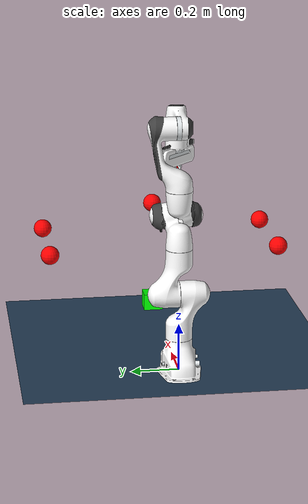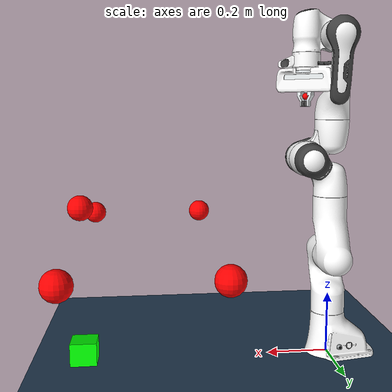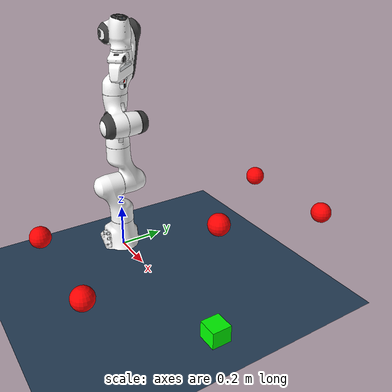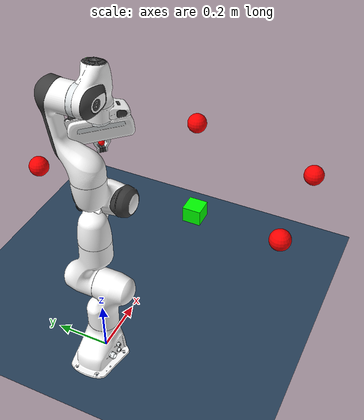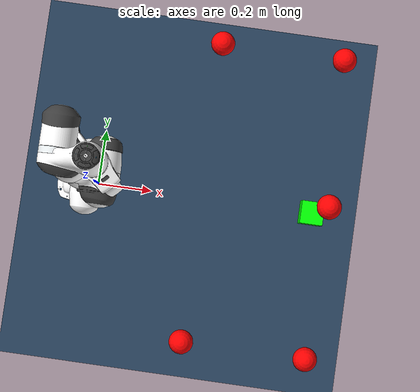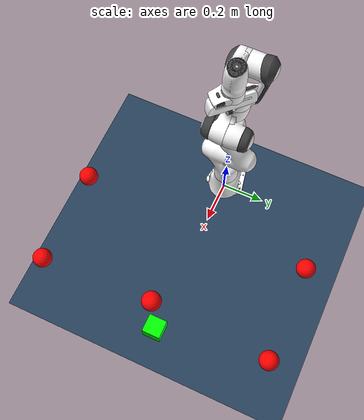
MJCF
<mujoco model="panda scene">
  <include file="panda.xml"/>

  <statistic center="0.3 0 0.4" extent="1"/>

  <visual>
    <headlight diffuse="0.6 0.6 0.6" ambient="0.3 0.3 0.3" specular="0 0 0"/>
    <rgba haze="0.15 0.25 0.35 1"/>
    <global azimuth="120" elevation="-20"/>
  </visual>

  <asset>
    <texture type="skybox" builtin="gradient" rgb1="0.3 0.5 0.7" rgb2="0 0 0" width="512" height="3072"/>
    <texture type="2d" name="groundplane" builtin="checker" mark="edge" rgb1="0.2 0.3 0.4" rgb2="0.1 0.2 0.3"
      markrgb="0.8 0.8 0.8" width="300" height="300"/>
    <material name="groundplane" texture="groundplane" texuniform="true" texrepeat="5 5" reflectance="0.2"/>
  </asset>

  <worldbody>
    <light pos="0 0 1.5" dir="0 0 -1" directional="true"/>
    <geom name="floor" size="0 0 0.05" type="plane" material="groundplane"/>

  <!-- add one box  -->
  <body name="cube" pos="0.8 0 0.03">
    <geom type="box" size="0.042 0.042 0.042" mass="0.05" rgba="0 1 0 1" friction="1.0 1.0 1.0" contype="1" conaffinity="1"/>
  </body>

  <!-- add 2 box  -->

  <geom name="obstacle1"
      type="sphere"
      size="0.04"
      pos="0.8 0.0 0.5"
      rgba="1 0 0 1"/>

  <geom name="obstacle3"
      type="sphere"
      size="0.04"
      pos="0.8 0.5 0.4"
      rgba="1 0 0 1"/>

  <geom name="obstacle4"
      type="sphere"
      size="0.04"
      pos="0.39 0.5 0.4"
      rgba="1 0 0 1"/>

  <geom name="obstacle5"
      type="sphere"
      size="0.04"
      pos="0.8 -0.5 0.4"
      rgba="1 0 0 1"/>

  <geom name="obstacle6"
      type="sphere"
      size="0.04"
      pos="0.39 -0.5 0.4"
      rgba="1 0 0 1"/>

  </worldbody>

</mujoco>

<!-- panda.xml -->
<mujoco model="panda">
  <compiler angle="radian" meshdir="assets" autolimits="true"/>

  <option integrator="implicitfast"/>

  <default>
    <default class="panda">
      <material specular="0.5" shininess="0.25"/>
      <joint armature="0.1" damping="1" axis="0 0 1" range="-2.8973 2.8973"/>
      <general dyntype="none" biastype="affine" ctrlrange="-2.8973 2.8973" forcerange="-87 87"/>
      <default class="finger">
        <joint axis="0 1 0" type="slide" range="0 0.04"/>
      </default>

      <default class="visual">
        <geom type="mesh" contype="0" conaffinity="0" group="2"/>
      </default>
      <default class="collision">
        <geom type="mesh" group="3"/>
        <default class="fingertip_pad_collision_1">
           <geom type="box" size="0.0085 0.004 0.0085" pos="0 0.0055 0.0445" friction="1.0 1.0 1.0001" contype="1" conaffinity="1" condim="4"/>
        </default>
        <default class="fingertip_pad_collision_2">
          <geom type="box" size="0.003 0.002 0.003" pos="0.0055 0.002 0.05" friction="1.0 1.0 1.0001" contype="1" conaffinity="1" condim="4"/>
        </default>
        <default class="fingertip_pad_collision_3">
          <geom type="box" size="0.003 0.002 0.003" pos="-0.0055 0.002 0.05" friction="1.0 1.0 1.0001" contype="1" conaffinity="1" condim="4"/>
        </default>
        <default class="fingertip_pad_collision_4">
          <geom type="box" size="0.003 0.002 0.0035" pos="0.0055 0.002 0.0395" friction="1.0 1.0 1.0001" contype="1" conaffinity="1" condim="4"/>
        </default>
        <default class="fingertip_pad_collision_5">
          <geom type="box" size="0.003 0.002 0.0035" pos="-0.0055 0.002 0.0395" friction="1.0 1.0 1.0001" contype="1" conaffinity="1" condim="4"/>
        </default>
      </default>
    </default>
  </default>

  <asset>
    <material class="panda" name="white" rgba="1 1 1 1"/>
    <material class="panda" name="off_white" rgba="0.901961 0.921569 0.929412 1"/>
    <material class="panda" name="black" rgba="0.25 0.25 0.25 1"/>
    <material class="panda" name="green" rgba="0 1 0 1"/>
    <material class="panda" name="light_blue" rgba="0.039216 0.541176 0.780392 1"/>

    <!-- Collision meshes -->
    <mesh name="link0_c" file="link0.stl"/>
    <mesh name="link1_c" file="link1.stl"/>
    <mesh name="link2_c" file="link2.stl"/>
    <mesh name="link3_c" file="link3.stl"/>
    <mesh name="link4_c" file="link4.stl"/>
    <mesh name="link5_c0" file="link5_collision_0.obj"/>
    <mesh name="link5_c1" file="link5_collision_1.obj"/>
    <mesh name="link5_c2" file="link5_collision_2.obj"/>
    <mesh name="link6_c" file="link6.stl"/>
    <mesh name="link7_c" file="link7.stl"/>
    <mesh name="hand_c" file="hand.stl"/>

    <!-- Visual meshes -->
    <mesh file="link0_0.obj"/>
    <mesh file="link0_1.obj"/>
    <mesh file="link0_2.obj"/>
    <mesh file="link0_3.obj"/>
    <mesh file="link0_4.obj"/>
    <mesh file="link0_5.obj"/>
    <mesh file="link0_7.obj"/>
    <mesh file="link0_8.obj"/>
    <mesh file="link0_9.obj"/>
    <mesh file="link0_10.obj"/>
    <mesh file="link0_11.obj"/>
    <mesh file="link1.obj"/>
    <mesh file="link2.obj"/>
    <mesh file="link3_0.obj"/>
    <mesh file="link3_1.obj"/>
    <mesh file="link3_2.obj"/>
    <mesh file="link3_3.obj"/>
    <mesh file="link4_0.obj"/>
    <mesh file="link4_1.obj"/>
    <mesh file="link4_2.obj"/>
    <mesh file="link4_3.obj"/>
    <mesh file="link5_0.obj"/>
    <mesh file="link5_1.obj"/>
    <mesh file="link5_2.obj"/>
    <mesh file="link6_0.obj"/>
    <mesh file="link6_1.obj"/>
    <mesh file="link6_2.obj"/>
    <mesh file="link6_3.obj"/>
    <mesh file="link6_4.obj"/>
    <mesh file="link6_5.obj"/>
    <mesh file="link6_6.obj"/>
    <mesh file="link6_7.obj"/>
    <mesh file="link6_8.obj"/>
    <mesh file="link6_9.obj"/>
    <mesh file="link6_10.obj"/>
    <mesh file="link6_11.obj"/>
    <mesh file="link6_12.obj"/>
    <mesh file="link6_13.obj"/>
    <mesh file="link6_14.obj"/>
    <mesh file="link6_15.obj"/>
    <mesh file="link6_16.obj"/>
    <mesh file="link7_0.obj"/>
    <mesh file="link7_1.obj"/>
    <mesh file="link7_2.obj"/>
    <mesh file="link7_3.obj"/>
    <mesh file="link7_4.obj"/>
    <mesh file="link7_5.obj"/>
    <mesh file="link7_6.obj"/>
    <mesh file="link7_7.obj"/>
    <mesh file="hand_0.obj"/>
    <mesh file="hand_1.obj"/>
    <mesh file="hand_2.obj"/>
    <mesh file="hand_3.obj"/>
    <mesh file="hand_4.obj"/>
    <mesh file="finger_0.obj"/>
    <mesh file="finger_1.obj"/>
  </asset>

  <worldbody>
    <light name="top" pos="0 0 2" mode="trackcom"/>
    <body name="link0" childclass="panda">
      <inertial mass="0.629769" pos="-0.041018 -0.00014 0.049974"
        fullinertia="0.00315 0.00388 0.004285 8.2904e-7 0.00015 8.2299e-6"/>
      <geom mesh="link0_0" material="off_white" class="visual"/>
      <geom mesh="link0_1" material="black" class="visual"/>
      <geom mesh="link0_2" material="off_white" class="visual"/>
      <geom mesh="link0_3" material="black" class="visual"/>
      <geom mesh="link0_4" material="off_white" class="visual"/>
      <geom mesh="link0_5" material="black" class="visual"/>
      <geom mesh="link0_7" material="white" class="visual"/>
      <geom mesh="link0_8" material="white" class="visual"/>
      <geom mesh="link0_9" material="black" class="visual"/>
      <geom mesh="link0_10" material="off_white" class="visual"/>
      <geom mesh="link0_11" material="white" class="visual"/>
      <geom mesh="link0_c" class="collision"/>
      <body name="link1" pos="0 0 0.333">
        <inertial mass="4.970684" pos="0.003875 0.002081 -0.04762"
          fullinertia="0.70337 0.70661 0.0091170 -0.00013900 0.0067720 0.019169"/>
        <joint name="joint1"/>
        <geom material="white" mesh="link1" class="visual"/>
        <geom name="link1_c" mesh="link1_c" class="collision"/>
        <body name="link2" quat="1 -1 0 0">
          <!-- violet color site @ link2   of VIBGYOR -->
          <site name="link2_site" type="sphere" pos="0 -0.14 0" size="0.056" rgba="0.56 0.00 1.00 0"/>
          <site name="link2_site2" type="sphere" pos="0 0 0.06" size="0.056" rgba="0.56 0.00 1.00 0"/>
          <inertial mass="0.646926" pos="-0.003141 -0.02872 0.003495"
            fullinertia="0.0079620 2.8110e-2 2.5995e-2 -3.925e-3 1.0254e-2 7.04e-4"/>
          <joint name="joint2" range="-1.7628 1.7628"/>
          <geom material="white" mesh="link2" class="visual"/>
          <geom name = "link2_c" mesh="link2_c" class="collision"/>
          <body name="link3" pos="0 -0.316 0" quat="1 1 0 0">
          <!-- indigo color site @ link3   of VIBGYOR -->
            <site name="link3_site" type="sphere" pos="0 0 -0.04" size="0.07" rgba="0.29 0.00 0.51 0"/>
            <site name="link3_site2" type="sphere" pos="0 0 -0.08" size="0.07" rgba="0.29 0.00 0.51 0"/>
            <site name="link3_site3" type="sphere" pos="0 0 -0.12" size="0.07" rgba="0.29 0.00 0.51 0"/>
            <joint name="joint3"/>
            <inertial mass="3.228604" pos="2.7518e-2 3.9252e-2 -6.6502e-2"
              fullinertia="3.7242e-2 3.6155e-2 1.083e-2 -4.761e-3 -1.1396e-2 -1.2805e-2"/>
            <geom mesh="link3_0" material="white" class="visual"/>
            <geom mesh="link3_1" material="white" class="visual"/>
            <geom mesh="link3_2" material="white" class="visual"/>
            <geom mesh="link3_3" material="black" class="visual"/>
            <geom name = "link3_c" mesh="link3_c" class="collision"/>
            <body name="link4" pos="0.0825 0 0" quat="1 1 0 0">
            <!-- blue color site @ link4   of VIBGYOR -->
              <site name="link4_site" type="sphere" pos="0 0 0" size="0.07" rgba="0.00 0.35 1.00 0"/>
              <site name="link4_site2" type="sphere" pos="0 0 0.05" size="0.07" rgba="0.00 0.35 1.00 0"/>
              <site name="link4_site3" type="sphere" pos="0 0 -0.05" size="0.07" rgba="0.00 0.35 1.00 0"/>
              <site name="link4_site4" type="sphere" pos="-0.08 0.085 0" size="0.07" rgba="0.00 0.35 1.00 0"/>
              <inertial mass="3.587895" pos="-5.317e-2 1.04419e-1 2.7454e-2" fullinertia="2.5853e-2 1.9552e-2 2.8323e-2 7.796e-3 -1.332e-3 8.641e-3"/>
              <joint name="joint4" range="-3.0718 -0.0698"/>
              <geom mesh="link4_0" material="white" class="visual"/>
              <geom mesh="link4_1" material="white" class="visual"/>
              <geom mesh="link4_2" material="black" class="visual"/>
              <geom mesh="link4_3" material="white" class="visual"/>
              <geom name = "link4_c" mesh="link4_c" class="collision"/>

              <body name="link5" pos="-0.0825 0.384 0" quat="1 -1 0 0">
                <site name="link5_site" type="sphere" pos="0 0.098 -0.06" size="0.06" rgba="0.00 0.80 0.00 0"/>
                <site name="link5_site2" type="sphere" pos="0 0.09 -0.1" size="0.06" rgba="0.00 0.80 0.00 0"/>
                <site name="link5_site3" type="sphere" pos="0 0.08 -0.15" size="0.06" rgba="0.00 0.80 0.00 0"/>
                <site name="link5_site4" type="sphere" pos="0 0.04 -0.19" size="0.06" rgba="0.00 0.80 0.00 0"/>
                <site name="link5_site5" type="sphere" pos="0 0 -0.23" size="0.06" rgba="0.00 0.80 0.00 0"/>
                <inertial mass="1.225946" pos="-1.1953e-2 4.1065e-2 -3.8437e-2"
                  fullinertia="3.5549e-2 2.9474e-2 8.627e-3 -2.117e-3 -4.037e-3 2.29e-4"/>
                <joint name="joint5"/>
                <geom mesh="link5_0" material="black" class="visual"/>
                <geom mesh="link5_1" material="white" class="visual"/>
                <geom mesh="link5_2" material="white" class="visual"/>
                <geom name = "link5_c0" mesh="link5_c0" class="collision"/>
                <geom name = "link5_c1" mesh="link5_c1" class="collision"/>
                <geom name = "link5_c2" mesh="link5_c2" class="collision"/>
                <body name="link6" quat="1 1 0 0">
                  <site name="link6_site" type="sphere" pos="0 0 0.01" size="0.06" rgba="1 1 0 0"/>
                  <site name="link6_site2" type="sphere" pos="0.06 0.015 0.01" size="0.06" rgba="1 1 0 0"/>
                  <site name="link6_site3" type="sphere" pos="0 0 -0.045" size="0.06" rgba="1 1 0 0"/>
                  <site name="link6_site4" type="sphere" pos="0 0 -0.085" size="0.06" rgba="1 1 0 0"/>
                  <inertial mass="1.666555" pos="6.0149e-2 -1.4117e-2 -1.0517e-2"
                    fullinertia="1.964e-3 4.354e-3 5.433e-3 1.09e-4 -1.158e-3 3.41e-4"/>
                  <joint name="joint6" range="-0.0175 3.7525"/>
                  <geom mesh="link6_0" material="off_white" class="visual"/>
                  <geom mesh="link6_1" material="white" class="visual"/>
                  <geom mesh="link6_2" material="black" class="visual"/>
                  <geom mesh="link6_3" material="white" class="visual"/>
                  <geom mesh="link6_4" material="white" class="visual"/>
                  <geom mesh="link6_5" material="white" class="visual"/>
                  <geom mesh="link6_6" material="white" class="visual"/>
                  <geom mesh="link6_7" material="light_blue" class="visual"/>
                  <geom mesh="link6_8" material="light_blue" class="visual"/>
                  <geom mesh="link6_9" material="black" class="visual"/>
                  <geom mesh="link6_10" material="black" class="visual"/>
                  <geom mesh="link6_11" material="white" class="visual"/>
                  <geom mesh="link6_12" material="green" class="visual"/>
                  <geom mesh="link6_13" material="white" class="visual"/>
                  <geom mesh="link6_14" material="black" class="visual"/>
                  <geom mesh="link6_15" material="black" class="visual"/>
                  <geom mesh="link6_16" material="white" class="visual"/>
                  <geom name="link6_c" mesh="link6_c" class="collision"/>
                  <body name="link7" pos="0.088 0 0" quat="1 1 0 0">
                  <!-- orange color site @ link2   of VIBGYOR -->
                    <site name="link7_site" type="sphere" pos="0 0 0" size="0.05" rgba="1.00 0.50 0.00 0"/>
                    <site name="link7_site2" type="sphere" pos="0 0 0.06" size="0.05" rgba="1.00 0.50 0.00 0"/>
                    <site name="link7_site3" type="sphere" pos="0 0 0.12" size="0.05" rgba="1.00 0.50 0.00 0"/>
                    <site name="link7_site4" type="sphere" pos="0 0 -0.045" size="0.05" rgba="1.00 0.50 0.00 0"/>
                    <site name="link7_site5" type="sphere" pos="-0.05 -0.05 0.13" size="0.05" rgba="1.00 0.50 0.00 0"/>
                    <site name="link7_site6" type="sphere" pos="0.05 0.05 0.13" size="0.05" rgba="1.00 0.50 0.00 0"/>
                    <inertial mass="7.35522e-01" pos="1.0517e-2 -4.252e-3 6.1597e-2"
                      fullinertia="1.2516e-2 1.0027e-2 4.815e-3 -4.28e-4 -1.196e-3 -7.41e-4"/>
                    <joint name="joint7"/>
                    <geom mesh="link7_0" material="white" class="visual"/>
                    <geom mesh="link7_1" material="black" class="visual"/>
                    <geom mesh="link7_2" material="black" class="visual"/>
                    <geom mesh="link7_3" material="black" class="visual"/>
                    <geom mesh="link7_4" material="black" class="visual"/>
                    <geom mesh="link7_5" material="black" class="visual"/>
                    <geom mesh="link7_6" material="black" class="visual"/>
                    <geom mesh="link7_7" material="white" class="visual"/>
                    <geom name = "link7_c" mesh="link7_c" class="collision"/>
                    <body name="hand" pos="0 0 0.107" quat="0.9238795 0 0 -0.3826834">
                     <site name="ee_site" pos="0 0 0.08" size="0.01" rgba="1 0 0 1"/>
                      <camera name="wrist_camera" pos="0.08 0 0.04" euler="0 -3.14 0"/>

                      <inertial mass="0.73" pos="-0.01 0 0.03" diaginertia="0.001 0.0025 0.0017"/>
                      <geom mesh="hand_0" material="off_white" class="visual"/>
                      <geom mesh="hand_1" material="black" class="visual"/>
                      <geom mesh="hand_2" material="black" class="visual"/>
                      <geom mesh="hand_3" material="white" class="visual"/>
                      <geom mesh="hand_4" material="off_white" class="visual"/>
                      <geom name = "hand_c" mesh="hand_c" class="collision"/>
                      <body name="left_finger" pos="0 0 0.0584">
                        <inertial mass="0.015" pos="0 0 0" diaginertia="2.375e-6 2.375e-6 7.5e-7"/>
                        <joint name="finger_joint1" class="finger"/>
                        <geom mesh="finger_0" material="off_white" class="visual"/>
                        <geom mesh="finger_1" material="black" class="visual"/>
                        <geom name = "finger_0" mesh="finger_0" class="collision"/>
                        <geom class="fingertip_pad_collision_1"/>
                        <geom class="fingertip_pad_collision_2"/>
                        <geom class="fingertip_pad_collision_3"/>
                        <geom class="fingertip_pad_collision_4"/>
                        <geom class="fingertip_pad_collision_5"/>
                      </body>
                      <body name="right_finger" pos="0 0 0.0584" quat="0 0 0 1">
                        <inertial mass="0.015" pos="0 0 0" diaginertia="2.375e-6 2.375e-6 7.5e-7"/>
                        <joint name="finger_joint2" class="finger"/>
                        <geom mesh="finger_0" material="off_white" class="visual"/>
                        <geom mesh="finger_1" material="black" class="visual"/>
                        <geom mesh="finger_0" class="collision"/>
                        <geom class="fingertip_pad_collision_1"/>
                        <geom class="fingertip_pad_collision_2"/>
                        <geom class="fingertip_pad_collision_3"/>
                        <geom class="fingertip_pad_collision_4"/>
                        <geom class="fingertip_pad_collision_5"/>
                      </body>
                    </body>
                  </body>
                </body>
              </body>
            </body>
          </body>
        </body>
      </body>
    </body>
  </worldbody>

  <tendon>
    <fixed name="split">
      <joint joint="finger_joint1" coef="0.5"/>
      <joint joint="finger_joint2" coef="0.5"/>
    </fixed>
  </tendon>

  <equality>
    <joint joint1="finger_joint1" joint2="finger_joint2" solimp="0.95 0.99 0.001" solref="0.005 1"/>
  </equality>

  <actuator>
    <!-- General Control== applying as pd control -->
    <!-- Remap original ctrlrange (0, 0.04) to (0, 255): 0.04 * 100 / 255 = 0.01568627451 -->

     <!-- vocbf_dynamics7.pt me overshoort rokne k lie biasprm ki value badha diya -->
    <general class="panda" name="actuator1" joint="joint1" gainprm="4500" biasprm="0 -4500 -1000"/>
    <general class="panda" name="actuator2" joint="joint2" gainprm="4500" biasprm="0 -4500 -1000"
      ctrlrange="-1.7628 1.7628"/>
    <general class="panda" name="actuator3" joint="joint3" gainprm="3500" biasprm="0 -3500 -1000"/>
    <general class="panda" name="actuator4" joint="joint4" gainprm="3500" biasprm="0 -3500 -1000"
      ctrlrange="-3.0718 -0.0698"/>
    <general class="panda" name="actuator5" joint="joint5" gainprm="2000" biasprm="0 -2000 -1000" forcerange="-12 12"/>
    <general class="panda" name="actuator6" joint="joint6" gainprm="2000" biasprm="0 -2000 -1000" forcerange="-12 12"
      ctrlrange="-0.0175 3.7525"/>
    <general class="panda" name="actuator7" joint="joint7" gainprm="2000" biasprm="0 -2000 -1000" forcerange="-12 12"/>
    <!-- Remap original ctrlrange (0, 0.04) to (0, 255): 0.04 * 100 / 255 = 0.01568627451 -->
    <general class="panda" name="actuator8" tendon="split" forcerange="-300 300" ctrlrange="0 255" gainprm="0.056 0 0" biasprm="0 -800 -800"/>

     <!-- MOTOR CONTROL == for applying torque directly  -->
  </actuator>

  <keyframe>
    <key name="home" qpos="0 0 0 -1.57079 0 1.57079 -0.7853 0.04 0.04" ctrl="0 0 0 -1.57079 0 1.57079 -0.7853 255"/>
  </keyframe>
</mujoco>
